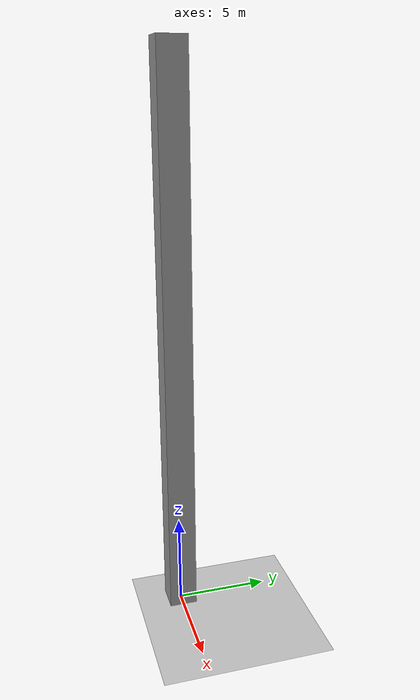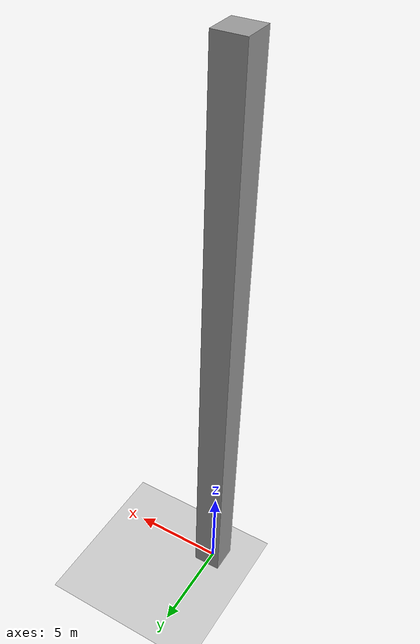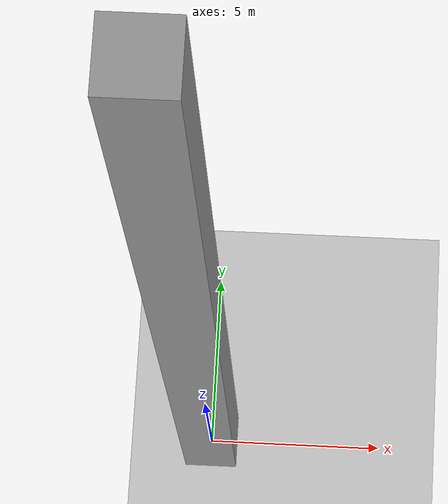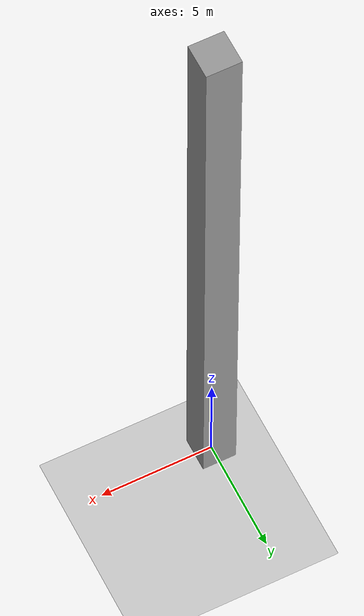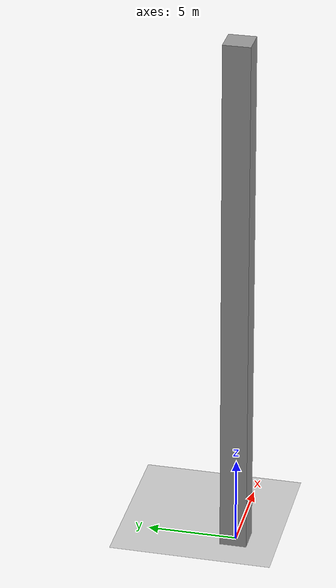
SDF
<?xml version="1.0"?>
<sdf version="1.5">
  <world name="H_world">
    <include>
      <uri>model://ground_plane</uri>
    </include>
    <include>
      <uri>model://sun</uri>
    </include>

    <gui>
    <camera name = 'cam'>
    <pose>-15 15 40 0 0.6 -0.8</pose>
    </camera>
    </gui>

    <model name='building' >
            <static>true</static>
            <pose>0 0 15 0 0 0 </pose>
      <link name='link' >
        <collision name='collision'>
          <geometry>
            <box>
              <size>1.5 1.5 30</size>
            </box>
          </geometry>
        </collision>
        <visual name='visual'>
          <geometry>
            <box>
              <size>1.5 1.5 30</size>
            </box>
          </geometry>
          <material>
            <script>
              <name>Gazebo/Grey</name>
              <uri>file://media/materials/scripts/gazebo.material</uri>
            </script>
          </material>
        </visual>
      </link>
    </model>
  </world>
</sdf>
